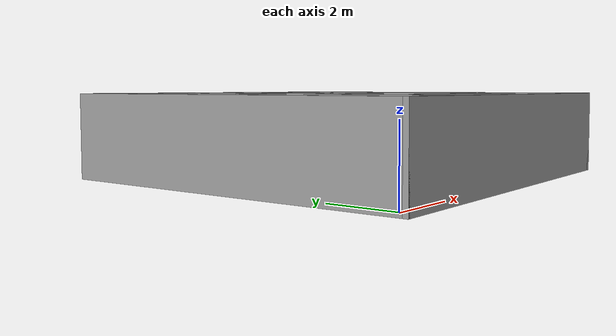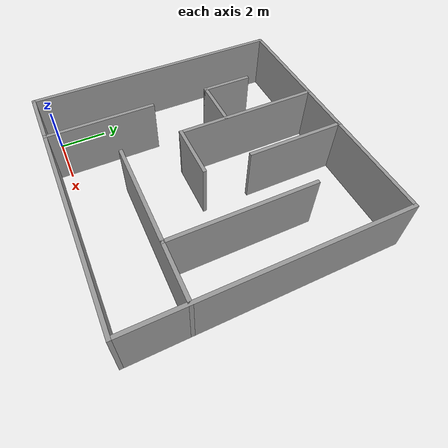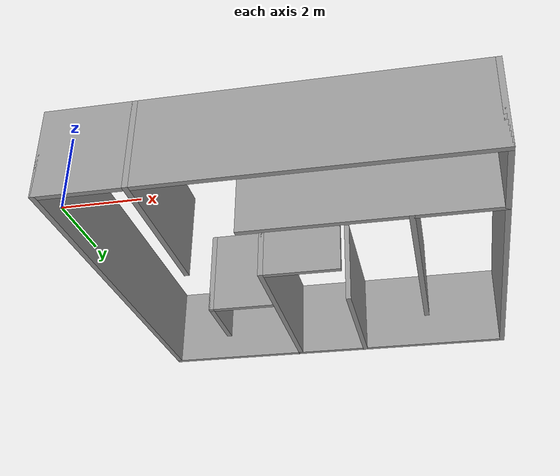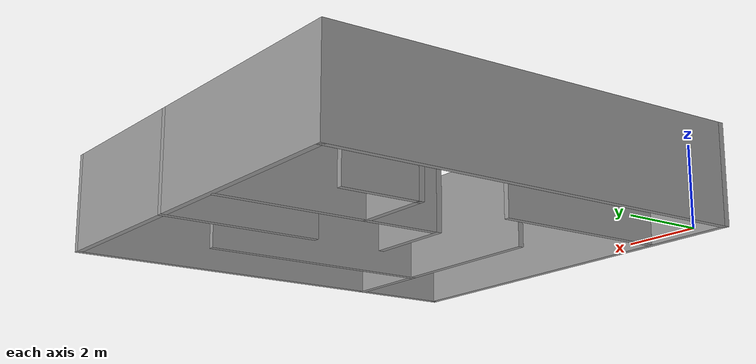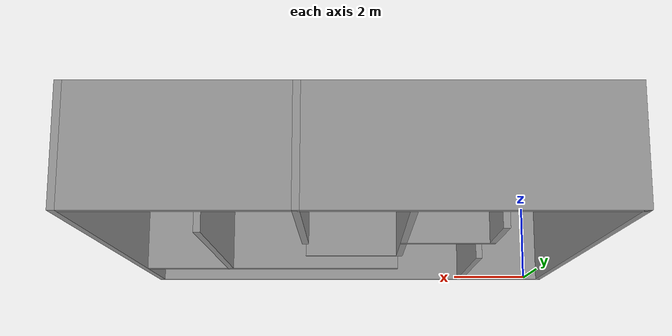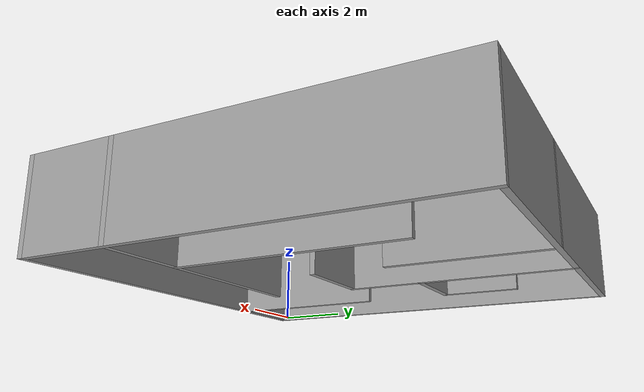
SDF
<?xml version='1.0'?>
<sdf version='1.7'>
  <model name='Maze'>
    <pose>5 5 0 0 -0 0</pose>
    <link name='Wall_0'>
      <collision name='Wall_0_Collision'>
        <geometry>
          <box>
            <size>11.15 0.15 2.5</size>
          </box>
        </geometry>
        <pose>0 0 1.25 0 -0 0</pose>
      </collision>
      <visual name='Wall_0_Visual'>
        <pose>0 0 1.25 0 -0 0</pose>
        <geometry>
          <box>
            <size>11.15 0.15 2.5</size>
          </box>
        </geometry>
        <material>
          <script>
            <uri>file://media/materials/scripts/gazebo.material</uri>
            <name>Gazebo/Grey</name>
          </script>
          <ambient>1 1 1 1</ambient>
        </material>
        <meta>
          <layer>0</layer>
        </meta>
      </visual>
      <pose>-5.5 -0 0 0 -0 1.5708</pose>
    </link>
    <link name='Wall_10'>
      <collision name='Wall_10_Collision'>
        <geometry>
          <box>
            <size>6.15 0.15 2.5</size>
          </box>
        </geometry>
        <pose>0 0 1.25 0 -0 0</pose>
      </collision>
      <visual name='Wall_10_Visual'>
        <pose>0 0 1.25 0 -0 0</pose>
        <geometry>
          <box>
            <size>6.15 0.15 2.5</size>
          </box>
        </geometry>
        <material>
          <script>
            <uri>file://media/materials/scripts/gazebo.material</uri>
            <name>Gazebo/Grey</name>
          </script>
          <ambient>1 1 1 1</ambient>
        </material>
        <meta>
          <layer>0</layer>
        </meta>
      </visual>
      <pose>3.2 -0 0 0 -0 1.5708</pose>
    </link>
    <link name='Wall_12'>
      <collision name='Wall_12_Collision'>
        <geometry>
          <box>
            <size>4.65 0.15 2.5</size>
          </box>
        </geometry>
        <pose>0 0 1.25 0 -0 0</pose>
      </collision>
      <visual name='Wall_12_Visual'>
        <pose>0 0 1.25 0 -0 0</pose>
        <geometry>
          <box>
            <size>4.65 0.15 2.5</size>
          </box>
        </geometry>
        <material>
          <script>
            <uri>file://media/materials/scripts/gazebo.material</uri>
            <name>Gazebo/Grey</name>
          </script>
          <ambient>1 1 1 1</ambient>
        </material>
        <meta>
          <layer>0</layer>
        </meta>
      </visual>
      <pose>-3.2 -3.25 0 0 -0 -1.5708</pose>
    </link>
    <link name='Wall_14'>
      <collision name='Wall_14_Collision'>
        <geometry>
          <box>
            <size>4.15 0.15 2.5</size>
          </box>
        </geometry>
        <pose>0 0 1.25 0 -0 0</pose>
      </collision>
      <visual name='Wall_14_Visual'>
        <pose>0 0 1.25 0 -0 0</pose>
        <geometry>
          <box>
            <size>4.15 0.15 2.5</size>
          </box>
        </geometry>
        <material>
          <script>
            <uri>file://media/materials/scripts/gazebo.material</uri>
            <name>Gazebo/Grey</name>
          </script>
          <ambient>1 1 1 1</ambient>
        </material>
        <meta>
          <layer>0</layer>
        </meta>
      </visual>
      <pose>1 3.5 0 0 -0 1.5708</pose>
    </link>
    <link name='Wall_18'>
      <collision name='Wall_18_Collision'>
        <geometry>
          <box>
            <size>2.35 0.15 2.5</size>
          </box>
        </geometry>
        <pose>0 0 1.25 0 -0 0</pose>
      </collision>
      <visual name='Wall_18_Visual'>
        <pose>0 0 1.25 0 -0 0</pose>
        <geometry>
          <box>
            <size>2.35 0.15 2.5</size>
          </box>
        </geometry>
        <material>
          <script>
            <uri>file://media/materials/scripts/gazebo.material</uri>
            <name>Gazebo/Grey</name>
          </script>
          <ambient>1 1 1 1</ambient>
        </material>
        <meta>
          <layer>0</layer>
        </meta>
      </visual>
      <pose>-0.1 -0.5 0 0 -0 0</pose>
    </link>
    <link name='Wall_2'>
      <collision name='Wall_2_Collision'>
        <geometry>
          <box>
            <size>11.15 0.15 2.5</size>
          </box>
        </geometry>
        <pose>0 0 1.25 0 -0 0</pose>
      </collision>
      <visual name='Wall_2_Visual'>
        <pose>0 0 1.25 0 -0 0</pose>
        <geometry>
          <box>
            <size>11.15 0.15 2.5</size>
          </box>
        </geometry>
        <material>
          <script>
            <uri>file://media/materials/scripts/gazebo.material</uri>
            <name>Gazebo/Grey</name>
          </script>
          <ambient>1 1 1 1</ambient>
        </material>
        <meta>
          <layer>0</layer>
        </meta>
      </visual>
      <pose>-0 -5.5 0 0 -0 0</pose>
    </link>
    <link name='Wall_20'>
      <collision name='Wall_20_Collision'>
        <geometry>
          <box>
            <size>6.15 0.15 2.5</size>
          </box>
        </geometry>
        <pose>0 0 1.25 0 -0 0</pose>
      </collision>
      <visual name='Wall_20_Visual'>
        <pose>0 0 1.25 0 -0 0</pose>
        <geometry>
          <box>
            <size>6.15 0.15 2.5</size>
          </box>
        </geometry>
        <material>
          <script>
            <uri>file://media/materials/scripts/gazebo.material</uri>
            <name>Gazebo/Grey</name>
          </script>
          <ambient>1 1 1 1</ambient>
        </material>
        <meta>
          <layer>0</layer>
        </meta>
      </visual>
      <pose>-1.2 2.5 0 0 -0 1.5708</pose>
    </link>
    <link name='Wall_22'>
      <collision name='Wall_22_Collision'>
        <geometry>
          <box>
            <size>2.15 0.15 2.5</size>
          </box>
        </geometry>
        <pose>0 0 1.25 0 -0 0</pose>
      </collision>
      <visual name='Wall_22_Visual'>
        <pose>0 0 1.25 0 -0 0</pose>
        <geometry>
          <box>
            <size>2.15 0.15 2.5</size>
          </box>
        </geometry>
        <material>
          <script>
            <uri>file://media/materials/scripts/gazebo.material</uri>
            <name>Gazebo/Grey</name>
          </script>
          <ambient>1 1 1 1</ambient>
        </material>
        <meta>
          <layer>0</layer>
        </meta>
      </visual>
      <pose>-2.2 1.5 0 0 -0 0</pose>
    </link>
    <link name='Wall_24'>
      <collision name='Wall_24_Collision'>
        <geometry>
          <box>
            <size>2.15 0.15 2.5</size>
          </box>
        </geometry>
        <pose>0 0 1.25 0 -0 0</pose>
      </collision>
      <visual name='Wall_24_Visual'>
        <pose>0 0 1.25 0 -0 0</pose>
        <geometry>
          <box>
            <size>2.15 0.15 2.5</size>
          </box>
        </geometry>
        <material>
          <script>
            <uri>file://media/materials/scripts/gazebo.material</uri>
            <name>Gazebo/Grey</name>
          </script>
          <ambient>1 1 1 1</ambient>
        </material>
        <meta>
          <layer>0</layer>
        </meta>
      </visual>
      <pose>-3.2 2.5 0 0 -0 1.5708</pose>
    </link>
    <link name='Wall_4'>
      <collision name='Wall_4_Collision'>
        <geometry>
          <box>
            <size>11.15 0.15 2.5</size>
          </box>
        </geometry>
        <pose>0 0 1.25 0 -0 0</pose>
      </collision>
      <visual name='Wall_4_Visual'>
        <pose>0 0 1.25 0 -0 0</pose>
        <geometry>
          <box>
            <size>11.15 0.15 2.5</size>
          </box>
        </geometry>
        <material>
          <script>
            <uri>file://media/materials/scripts/gazebo.material</uri>
            <name>Gazebo/Grey</name>
          </script>
          <ambient>1 1 1 1</ambient>
        </material>
        <meta>
          <layer>0</layer>
        </meta>
      </visual>
      <pose>5.5 -0 0 0 -0 -1.5708</pose>
    </link>
    <link name='Wall_6'>
      <collision name='Wall_6_Collision'>
        <geometry>
          <box>
            <size>11.15 0.15 2.5</size>
          </box>
        </geometry>
        <pose>0 0 1.25 0 -0 0</pose>
      </collision>
      <visual name='Wall_6_Visual'>
        <pose>0 0 1.25 0 -0 0</pose>
        <geometry>
          <box>
            <size>11.15 0.15 2.5</size>
          </box>
        </geometry>
        <material>
          <script>
            <uri>file://media/materials/scripts/gazebo.material</uri>
            <name>Gazebo/Grey</name>
          </script>
          <ambient>1 1 1 1</ambient>
        </material>
        <meta>
          <layer>0</layer>
        </meta>
      </visual>
      <pose>-0 5.5 0 0 -0 3.14159</pose>
    </link>
    <link name='Wall_8'>
      <collision name='Wall_8_Collision'>
        <geometry>
          <box>
            <size>6.85 0.15 2.5</size>
          </box>
        </geometry>
        <pose>0 0 1.25 0 -0 0</pose>
      </collision>
      <visual name='Wall_8_Visual'>
        <pose>0 0 1.25 0 -0 0</pose>
        <geometry>
          <box>
            <size>6.85 0.15 2.5</size>
          </box>
        </geometry>
        <material>
          <script>
            <uri>file://media/materials/scripts/gazebo.material</uri>
            <name>Gazebo/Grey</name>
          </script>
          <ambient>1 1 1 1</ambient>
        </material>
        <meta>
          <layer>0</layer>
        </meta>
      </visual>
      <pose>2.15 -3 0 0 -0 3.14159</pose>
    </link>
    <static>1</static>
  </model>
</sdf>
